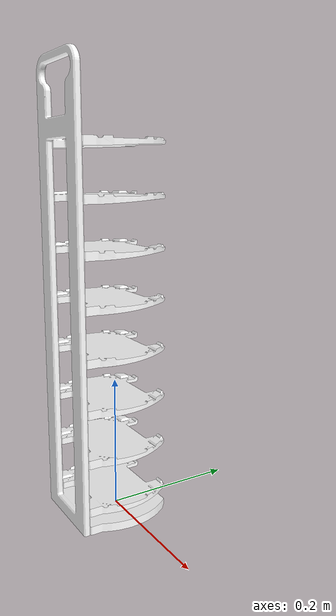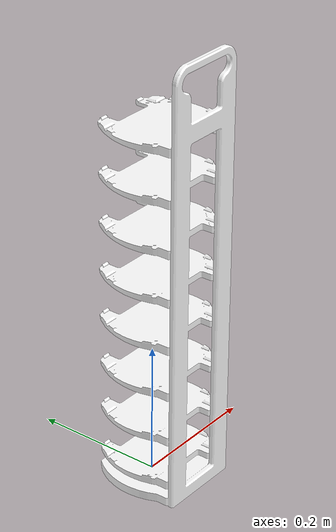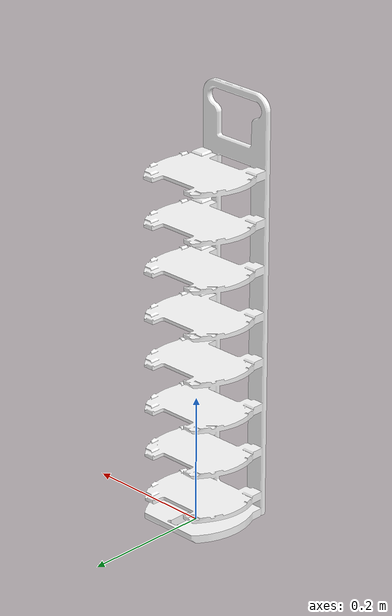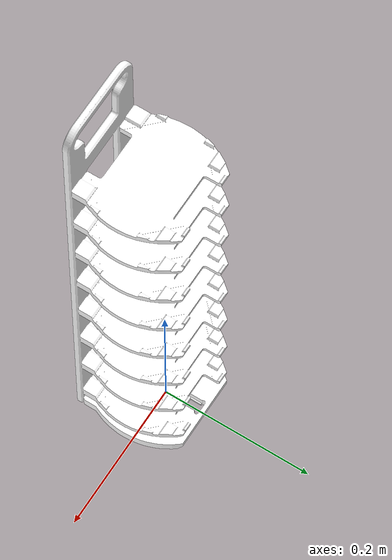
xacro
<?xml version="1.0"?>
<robot xmlns:xacro="http://www.ros.org/wiki/xacro" name="preview_thermo_orbitor_rs2_hotel_v2">
  <xacro:arg name="mesh_path" default="/Users/newtides/Downloads/Uni-Lab-OS-main/unilabos/device_mesh" />

  <xacro:include filename="macro_device_v2.xacro" />

  <link name="world" />

  <xacro:thermo_orbitor_rs2_hotel_v2
    mesh_path="$(arg mesh_path)"
    parent_link="world"
    station_name="preview_"
    device_name="thermo_orbitor_rs2_hotel_"
    x="0" y="0" z="0"
    rx="0" ry="0" r="0" />
</robot>

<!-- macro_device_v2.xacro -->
<robot xmlns:xacro="http://www.ros.org/wiki/xacro">
  <xacro:macro name="thermo_orbitor_rs2_hotel_v2"
    params="parent_link:='' station_name:='' device_name:='' x:=0 y:=0 z:=0 rx:=0 ry:=0 r:=0 mesh_path:=''">

    <joint name="${station_name}${device_name}base_link_joint" type="fixed">
      <origin xyz="${x} ${y} ${z}" rpy="${rx} ${ry} ${r}" />
      <parent link="${parent_link}"/>
      <child link="${station_name}${device_name}device_link"/>
    </joint>

    <link name="${station_name}${device_name}device_link"/>

    <joint name="${station_name}${device_name}device_link_joint" type="fixed">
      <origin xyz="0 0 0" rpy="0 0 0" />
      <parent link="${station_name}${device_name}device_link"/>
      <child link="${station_name}${device_name}base_link"/>
    </joint>

    <link name='${station_name}${device_name}base_link'>
      <inertial>
        <origin xyz="0 0 0.28" rpy="0 0 0" />
        <mass value="32.0" />
        <inertia ixx="1.4" ixy="0.0" ixz="0.0" iyy="1.1" iyz="0.0" izz="1.8" />
      </inertial>
      <visual name='visual'>
        <origin rpy="-${pi/2} 0 ${pi}" xyz="0 0 0"/>
        <geometry>
          <mesh filename="file://${mesh_path}/devices/thermo_orbitor_rs2_hotel/meshes/hotel.stl"/>
        </geometry>
        <material name="clay">
          <color rgba="1 1 1 1"/>
        </material>
      </visual>
      <collision>
        <origin rpy="-${pi/2} 0 ${pi}" xyz="0 0 0"/>
        <geometry>
          <mesh filename="file://${mesh_path}/devices/thermo_orbitor_rs2_hotel/meshes/hotel.stl"/>
        </geometry>
      </collision>
    </link>

    <xacro:property name="delta" value="0.073" />
    <xacro:macro name='platetargets' params='num'>
      <link name='${station_name}${device_name}slot_${num}_frame'/>
      <joint name='${station_name}${device_name}slot_${num}_frame_joint' type='fixed'>
        <parent link="${station_name}${device_name}base_link"/>
        <child link="${station_name}${device_name}slot_${num}_frame"/>
        <origin rpy="0 0 ${pi/2}" xyz="-0.002 0.011 ${(num - 1) * delta + 0.038}"/>
      </joint>
    </xacro:macro>

    <xacro:platetargets num='1' />
    <xacro:platetargets num='2' />
    <xacro:platetargets num='3' />
    <xacro:platetargets num='4' />
    <xacro:platetargets num='5' />
    <xacro:platetargets num='6' />
    <xacro:platetargets num='7' />
    <xacro:platetargets num='8' />

    <link name='${station_name}${device_name}transfer_port'/>
    <joint name='${station_name}${device_name}transfer_port_joint' type='fixed'>
      <parent link="${station_name}${device_name}base_link"/>
      <child link="${station_name}${device_name}transfer_port"/>
      <origin rpy="0 0 ${pi/2}" xyz="-0.002 0.011 0.18"/>
    </joint>
  </xacro:macro>
</robot>
